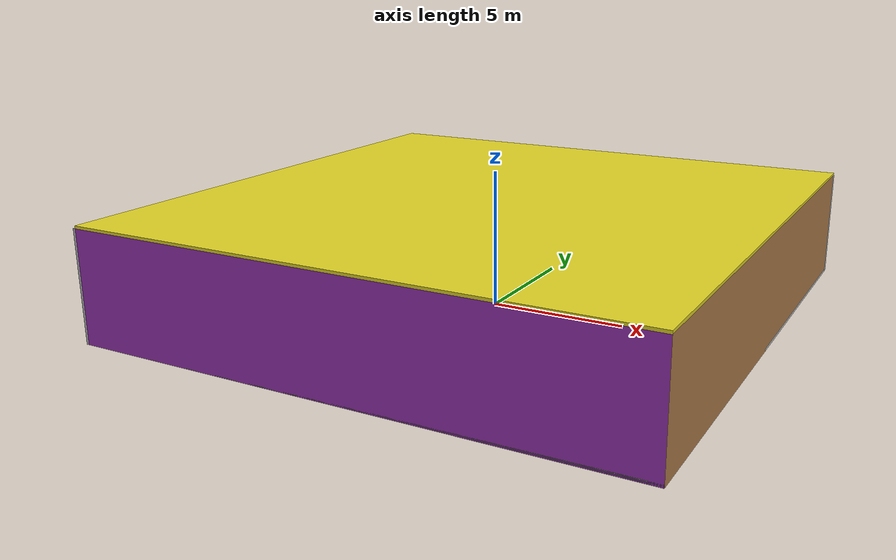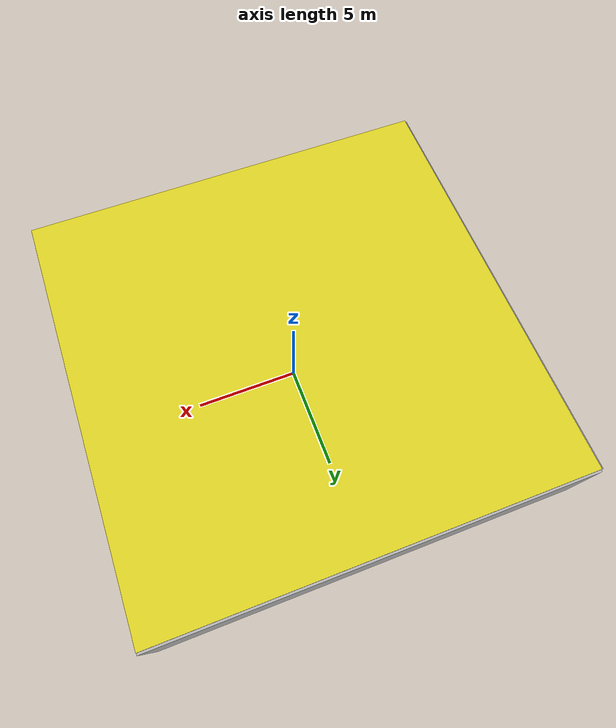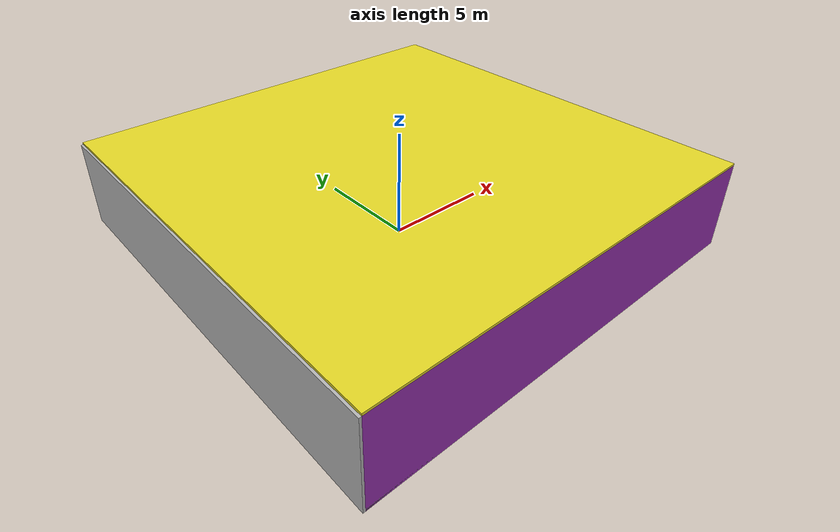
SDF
<sdf version="1.4">
 <world name="default">
  <physics type="ode">
   <max_step_size>0.001</max_step_size>
   <real_time_factor>1</real_time_factor>
   <real_time_update_rate>1000</real_time_update_rate>
   <gravity>0 0 -9.8</gravity>
  </physics>
  <scene><ambient>0.4 0.4 0.4 1</ambient><background>0.7 0.7 0.7 1</background><shadows>1</shadows></scene>
  <model name="Surrounding">
   <static>1</static>
   <link name="Ceiling">
    <collision name="Ceiling_Collision"><geometry><box><size>20 20 0.1</size></box></geometry></collision>
    <visual name="Ceiling_Visual">
     <geometry><box><size>20 20 0.1</size></box></geometry>
     <material>
      <script><uri>file://media/materials/scripts/gazebo.material</uri><name>Gazebo/YellowGlow</name></script>
     </material>
    </visual>
    <pose>0 0 4.05 0 0 0</pose>
   </link>
   <link name="Wall_South">
    <collision name="Wall_South_Collision">
     <geometry><box><size>20 0 4</size></box></geometry>
     <pose>0 0 2 0 -0 0</pose>
    </collision>
    <visual name="Wall_South_Visual">
     <pose>0 0 2 0 -0 0</pose>
     <geometry><box><size>20 0 4</size></box></geometry>
     <material>
      <script><uri>file://media/materials/scripts/gazebo.material</uri><name>Gazebo/PurpleGlow</name></script>
     </material>
    </visual>
    <velocity_decay><linear>0</linear><angular>0</angular></velocity_decay>
    <pose>0 -10 0 0 -0 0</pose>
   </link>
   <link name="Wall_East">
    <collision name="Wall_21_Collision">
     <geometry><box><size>20 0 4</size></box></geometry>
     <pose>0 0 2 0 -0 0</pose>
    </collision>
    <visual name="Wall_21_Visual">
     <pose>0 0 2 0 -0 0</pose>
     <geometry><box><size>20 0 4</size></box></geometry>
     <material>
      <script><uri>file://media/materials/scripts/gazebo.material</uri><name>Gazebo/Wood</name></script>
     </material>
    </visual>
    <velocity_decay><linear>0</linear><angular>0</angular></velocity_decay>
    <pose>10 0 0 0 -0 1.5708</pose>
   </link>
   <link name="Wall_North">
    <collision name="Wall_22_Collision">
     <geometry><box><size>20 0.2 4</size></box></geometry>
     <pose>0 0 2 0 -0 0</pose>
    </collision>
    <visual name="Wall_22_Visual">
     <pose>0 0 2 0 -0 0</pose>
     <geometry><box><size>20 0.2 4</size></box></geometry>
     <material>
      <script><uri>file://media/materials/scripts/gazebo.material</uri><name>Gazebo/LightOn</name></script>
     </material>
    </visual>
    <velocity_decay><linear>0</linear><angular>0</angular></velocity_decay>
    <pose>0 10 0 0 -0 0</pose>
   </link>
   <link name="Wall_West">
    <collision name="Wall_23_Collision">
     <geometry><box><size>20 0.2 4</size></box></geometry>
     <pose>0 0 2 0 -0 0</pose>
    </collision>
    <visual name="Wall_23_Visual">
     <pose>0 0 2 0 -0 0</pose>
     <geometry><box><size>20 0.2 4</size></box></geometry>
     <material>
      <script><uri>file://media/materials/scripts/gazebo.material</uri><name>Gazebo/CloudySky</name></script>
     </material>
    </visual>
    <velocity_decay><linear>0</linear><angular>0</angular></velocity_decay>
    <pose>-10 0 0 0 0 -1.5708</pose>
   </link>
   <link name="Ground_link">
    <collision name="collision">
     <pose>0 0 .05 0 -0 0</pose>
     <geometry><box><size>20 20 0.1</size></box></geometry>
    </collision>
    <visual name="visual">
     <pose>0 0 .05 0 -0 0</pose>
     <geometry><box><size>20 20 0.1</size></box></geometry>
     <material>
      <script><uri>file://media/materials/scripts/gazebo.material</uri><name>Gazebo/CloudySky</name></script>
     </material>
    </visual>
   </link>
   <static>1</static>
  </model>
  <spherical_coordinates>
   <surface_model>EARTH_WGS84</surface_model>
   <latitude_deg>0</latitude_deg>
   <longitude_deg>0</longitude_deg>
   <elevation>0</elevation>
   <heading_deg>0</heading_deg>
  </spherical_coordinates>
  <light name="lightball_0" type="diffuse">
   <diffuse>0.8 0.8 0.8 1</diffuse>
   <specular>0.2 0.2 0.2 1</specular>
   <attenuation>
    <range>100</range>
    <constant>0.7</constant>
    <linear>0.01</linear>
    <quadratic>0.001</quadratic>
   </attenuation>
   <direction>-0.5 0.1 -0.9</direction>
   <pose>-9.13502057875 1.00517439676 2.75335807865 0 0 0</pose>
  </light>
  <light name="lightball_1" type="diffuse">
   <diffuse>0.8 0.8 0.8 1</diffuse>
   <specular>0.2 0.2 0.2 1</specular>
   <attenuation>
    <range>100</range>
    <constant>0.7</constant>
    <linear>0.01</linear>
    <quadratic>0.001</quadratic>
   </attenuation>
   <direction>-0.5 0.1 -0.9</direction>
   <pose>-7.76954859044 6.08778904714 0.614749367396 0 0 0</pose>
  </light>
  <light name="lightball_2" type="diffuse">
   <diffuse>0.8 0.8 0.8 1</diffuse>
   <specular>0.2 0.2 0.2 1</specular>
   <attenuation>
    <range>100</range>
    <constant>0.7</constant>
    <linear>0.01</linear>
    <quadratic>0.001</quadratic>
   </attenuation>
   <direction>-0.5 0.1 -0.9</direction>
   <pose>-1.37091438167 4.38291181471 3.26353186323 0 0 0</pose>
  </light>
  <light name="lightball_3" type="diffuse">
   <diffuse>0.8 0.8 0.8 1</diffuse>
   <specular>0.2 0.2 0.2 1</specular>
   <attenuation>
    <range>100</range>
    <constant>0.7</constant>
    <linear>0.01</linear>
    <quadratic>0.001</quadratic>
   </attenuation>
   <direction>-0.5 0.1 -0.9</direction>
   <pose>-4.53085018105 -6.95653592183 0.822324410875 0 0 0</pose>
  </light>
  <light name="lightball_4" type="diffuse">
   <diffuse>0.8 0.8 0.8 1</diffuse>
   <specular>0.2 0.2 0.2 1</specular>
   <attenuation>
    <range>100</range>
    <constant>0.7</constant>
    <linear>0.01</linear>
    <quadratic>0.001</quadratic>
   </attenuation>
   <direction>-0.5 0.1 -0.9</direction>
   <pose>0.993513481166 -0.288541559643 1.34055681669 0 0 0</pose>
  </light>
  <light name="lightball_5" type="diffuse">
   <diffuse>0.8 0.8 0.8 1</diffuse>
   <specular>0.2 0.2 0.2 1</specular>
   <attenuation>
    <range>100</range>
    <constant>0.7</constant>
    <linear>0.01</linear>
    <quadratic>0.001</quadratic>
   </attenuation>
   <direction>-0.5 0.1 -0.9</direction>
   <pose>8.40931023337 1.97072473866 2.00671333659 0 0 0</pose>
  </light>
  <light name="lightball_6" type="diffuse">
   <diffuse>0.8 0.8 0.8 1</diffuse>
   <specular>0.2 0.2 0.2 1</specular>
   <attenuation>
    <range>100</range>
    <constant>0.7</constant>
    <linear>0.01</linear>
    <quadratic>0.001</quadratic>
   </attenuation>
   <direction>-0.5 0.1 -0.9</direction>
   <pose>-0.152493785189 3.66318072736 2.96361534159 0 0 0</pose>
  </light>
  <light name="lightball_7" type="diffuse">
   <diffuse>0.8 0.8 0.8 1</diffuse>
   <specular>0.2 0.2 0.2 1</specular>
   <attenuation>
    <range>100</range>
    <constant>0.7</constant>
    <linear>0.01</linear>
    <quadratic>0.001</quadratic>
   </attenuation>
   <direction>-0.5 0.1 -0.9</direction>
   <pose>3.08769936587 9.62920030486 1.73621407467 0 0 0</pose>
  </light>
  <include>
   <uri>model://construction_cone</uri>
   <pose>-7.87584052389 -1.6247934679 0 0 0 0.378502928569</pose>
  </include>
  <include>
   <uri>model://textured_shapes</uri>
   <pose>-1.03721386238 -6.91180282744 0 0 0 1.97834293709</pose>
  </include>
  <include><uri>model://table</uri><pose>1.92898041542 -4.18129919156 0 0 0 3.05669771521</pose></include>
  <include><uri>model://cabinet</uri><pose>1.06558337029 0.80287612102 0 0 0 1.60886369252</pose></include>
 </world>
</sdf>

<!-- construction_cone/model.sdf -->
<sdf version="1.5">
  <model name="Construction Cone">
    <link name="link">
      <collision name="collision">
        <geometry>
          <mesh>
            <scale>10 10 10</scale>
            <uri>file://isr-testbed/construction_cone/meshes/construction_cone.dae</uri>
          </mesh>
        </geometry>
      </collision>
      <visual name="visual">
        <geometry>
          <mesh>
            <scale>10 10 10</scale>
            <uri>file://isr-testbed/construction_cone/meshes/construction_cone.dae</uri>
          </mesh>
        </geometry>
      </visual>
    </link>
  </model>
</sdf>

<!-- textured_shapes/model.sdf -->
<sdf version="1.6">
  <model name="textured_shapes">
    <pose>0 0 0.5 0 0 0</pose>
    <link name="box">
      <pose>0 -1.5 0 0 0 0</pose>
      <collision name="collision">
        <geometry>
          <box>
            <size>1 1 1</size>
          </box>
        </geometry>
      </collision>
      <visual name="visual">
        <geometry>
          <box>
            <size>1 1 1</size>
          </box>
        </geometry>
        <material>
          <script>
            <uri>model://../model_source/models/textured_shapes/materials/scripts</uri>
            <uri>model://../model_source/models/textured_shapes/materials/textures</uri>
            <name>TexturedShape/Squares</name>
          </script>
        </material>
      </visual>
    </link>
    <link name="sphere">
      <collision name="collision">
        <geometry>
          <sphere>
            <radius>0.5</radius>
          </sphere>
        </geometry>
      </collision>
      <visual name="visual">
        <geometry>
          <sphere>
            <radius>0.5</radius>
          </sphere>
        </geometry>
        <material>
          <script>
            <uri>model://../model_source/models/textured_shapes/materials/scripts</uri>
            <uri>model://../model_source/models/textured_shapes/materials/textures</uri>
            <name>TexturedShape/Squares</name>
          </script>
        </material>
      </visual>
    </link>
    <link name="cylinder">
      <pose>0 1.5 0 0 0 0</pose>
      <collision name="collision">
        <geometry>
          <cylinder>
            <radius>0.5</radius>
            <length>1</length>
          </cylinder>
        </geometry>
      </collision>
      <visual name="visual">
        <geometry>
          <cylinder>
            <radius>0.5</radius>
            <length>1</length>
          </cylinder>
        </geometry>
        <material>
          <script>
            <uri>model://../model_source/models/textured_shapes/materials/scripts</uri>
            <uri>model://../model_source/models/textured_shapes/materials/textures</uri>
            <name>TexturedShape/Squares</name>
          </script>
        </material>
      </visual>
    </link>
  </model>
</sdf>

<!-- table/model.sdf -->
<sdf version="1.5">
  <model name="table">
    <static>true</static>
    <link name="link">
      <collision name="surface">
        <pose>0 0 1.0 0 0 0</pose>
        <geometry>
          <box>
            <size>1.5 0.8 0.03</size>
          </box>
        </geometry>
        <surface>
          <friction>
            <ode>
              <mu>0.6</mu>
              <mu2>0.6</mu2>
            </ode>
          </friction>
        </surface>
      </collision>
      <visual name="visual1">
        <pose>0 0 1.0 0 0 0</pose>
        <geometry>
          <box>
            <size>1.5 0.8 0.03</size>
          </box>
        </geometry>
        <material>
          <script>
            <uri>model://media/materials/scripts/gazebo.material</uri>
            <name>Gazebo/Wood</name>
          </script>
        </material>
      </visual>
      <collision name="front_left_leg">
        <pose>0.68 0.38 0.5 0 0 0</pose>
        <geometry>
          <cylinder>
            <radius>0.02</radius>
            <length>1.0</length>
          </cylinder>
        </geometry>
      </collision>
      <visual name="front_left_leg">
        <pose>0.68 0.38 0.5 0 0 0</pose>
        <geometry>
          <cylinder>
            <radius>0.02</radius>
            <length>1.0</length>
          </cylinder>
        </geometry>
        <material>
          <script>
            <uri>model://media/materials/scripts/gazebo.material</uri>
            <name>Gazebo/Grey</name>
          </script>
        </material>
      </visual>
      <collision name="front_right_leg">
        <pose>0.68 -0.38 0.5 0 0 0</pose>
        <geometry>
          <cylinder>
            <radius>0.02</radius>
            <length>1.0</length>
          </cylinder>
        </geometry>
      </collision>
      <visual name="front_right_leg">
        <pose>0.68 -0.38 0.5 0 0 0</pose>
        <geometry>
          <cylinder>
            <radius>0.02</radius>
            <length>1.0</length>
          </cylinder>
        </geometry>
        <material>
          <script>
            <uri>model://media/materials/scripts/gazebo.material</uri>
            <name>Gazebo/Grey</name>
          </script>
        </material>
      </visual>
      <collision name="back_right_leg">
        <pose>-0.68 -0.38 0.5 0 0 0</pose>
        <geometry>
          <cylinder>
            <radius>0.02</radius>
            <length>1.0</length>
          </cylinder>
        </geometry>
      </collision>
      <visual name="back_right_leg">
        <pose>-0.68 -0.38 0.5 0 0 0</pose>
        <geometry>
          <cylinder>
            <radius>0.02</radius>
            <length>1.0</length>
          </cylinder>
        </geometry>
        <material>
          <script>
            <uri>model://media/materials/scripts/gazebo.material</uri>
            <name>Gazebo/Grey</name>
          </script>
        </material>
      </visual>
      <collision name="back_left_leg">
        <pose>-0.68 0.38 0.5 0 0 0</pose>
        <geometry>
          <cylinder>
            <radius>0.02</radius>
            <length>1.0</length>
          </cylinder>
        </geometry>
      </collision>
      <visual name="back_left_leg">
        <pose>-0.68 0.38 0.5 0 0 0</pose>
        <geometry>
          <cylinder>
            <radius>0.02</radius>
            <length>1.0</length>
          </cylinder>
        </geometry>
        <material>
          <script>
            <uri>model://media/materials/scripts/gazebo.material</uri>
            <name>Gazebo/Grey</name>
          </script>
        </material>
      </visual>
    </link>
  </model>
</sdf>

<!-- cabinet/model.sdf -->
<sdf version="1.5">
  <model name="cabinet">
    <static>true</static>
    <link name="cabinet_bottom_plate">
      <inertial>
        <pose>0 0 -1 0 0 0</pose>
        <inertia>
          <ixx>2.050000</ixx>
          <ixy>0</ixy>
          <ixz>0</ixz>
          <iyy>2.050000</iyy>
          <iyz>0</iyz>
          <izz>2.050000</izz>
        </inertia>
        <mass>25.000000</mass>
      </inertial>
      <collision name="cabinet_bottom_plate_geom">
        <pose>0 0 0.010000 0 0 0</pose>
        <geometry>
          <box>
            <size>0.450000 0.450000 0.020000</size>
          </box>
        </geometry>
      </collision>
      <visual name="cabinet_bottom_plate_geom_visual">
        <pose>0 0 0.010000 0 0 0</pose>
        <geometry>
          <box>
            <size>0.450000 0.450000 0.020000</size>
          </box>
        </geometry>
        <material>
          <script>
            <uri>model://media/materials/scripts/gazebo.material</uri>
            <name>Gazebo/Wood</name>
          </script>
        </material>
      </visual>
      <collision name="cabinet_bottom_plate_geom_cabinet_back_plate">
        <pose>0.235000 0 0.510000 0 0 0</pose>
        <geometry>
          <box>
            <size>0.020000 0.450000 1.020000</size>
          </box>
        </geometry>
      </collision>
      <visual name="cabinet_bottom_plate_geom_cabinet_back_plate_visual">
        <pose>0.235000 0 0.510000 0 0 0</pose>
        <geometry>
          <box>
            <size>0.020000 0.450000 1.020000</size>
          </box>
        </geometry>
        <material>
          <script>
            <uri>model://media/materials/scripts/gazebo.material</uri>
            <name>Gazebo/Wood</name>
          </script>
        </material>
      </visual>
      <collision name="cabinet_bottom_plate_geom_cabinet_left_plate">
        <pose>0 0.235000 0.510000 0 0 0</pose>
        <geometry>
          <box>
            <size>0.450000 0.020000 1.020000</size>
          </box>
        </geometry>
      </collision>
      <visual name="cabinet_bottom_plate_geom_cabinet_left_plate_visual">
        <pose>0 0.235000 0.510000 0 0 0</pose>
        <geometry>
          <box>
            <size>0.450000 0.020000 1.020000</size>
          </box>
        </geometry>
        <material>
          <script>
            <uri>model://media/materials/scripts/gazebo.material</uri>
            <name>Gazebo/Wood</name>
          </script>
        </material>
      </visual>
      <collision name="cabinet_bottom_plate_geom_cabinet_middle_plate">
        <pose>0 0 0.510000 0 0 0</pose>
        <geometry>
          <box>
            <size>0.450000 0.450000 0.020000</size>
          </box>
        </geometry>
      </collision>
      <visual name="cabinet_bottom_plate_geom_cabinet_middle_plate_visual">
        <pose>0 0 0.510000 0 0 0</pose>
        <geometry>
          <box>
            <size>0.450000 0.450000 0.020000</size>
          </box>
        </geometry>
        <material>
          <script>
            <uri>model://media/materials/scripts/gazebo.material</uri>
            <name>Gazebo/Wood</name>
          </script>
        </material>
      </visual>
      <collision name="cabinet_bottom_plate_geom_cabinet_right_plate">
        <pose>0 -0.235000 0.510000 0 0 0</pose>
        <geometry>
          <box>
            <size>0.450000 0.020000 1.020000</size>
          </box>
        </geometry>
      </collision>
      <visual name="cabinet_bottom_plate_geom_cabinet_right_plate_visual">
        <pose>0 -0.235000 0.510000 0 0 0</pose>
        <geometry>
          <box>
            <size>0.450000 0.020000 1.020000</size>
          </box>
        </geometry>
        <material>
          <script>
            <uri>model://media/materials/scripts/gazebo.material</uri>
            <name>Gazebo/Wood</name>
          </script>
        </material>
      </visual>
      <collision name="cabinet_bottom_plate_geom_cabinet_top_plate">
        <pose>0 0 1.010000 0 0 0</pose>
        <geometry>
          <box>
            <size>0.450000 0.450000 0.020000</size>
          </box>
        </geometry>
      </collision>
      <visual name="cabinet_bottom_plate_geom_cabinet_top_plate_visual">
        <pose>0 0 1.010000 0 0 0</pose>
        <geometry>
          <box>
            <size>0.450000 0.450000 0.020000</size>
          </box>
        </geometry>
        <material>
          <script>
            <uri>model://media/materials/scripts/gazebo.material</uri>
            <name>Gazebo/Wood</name>
          </script>
        </material>
      </visual>
    </link>
  </model>
</sdf>
